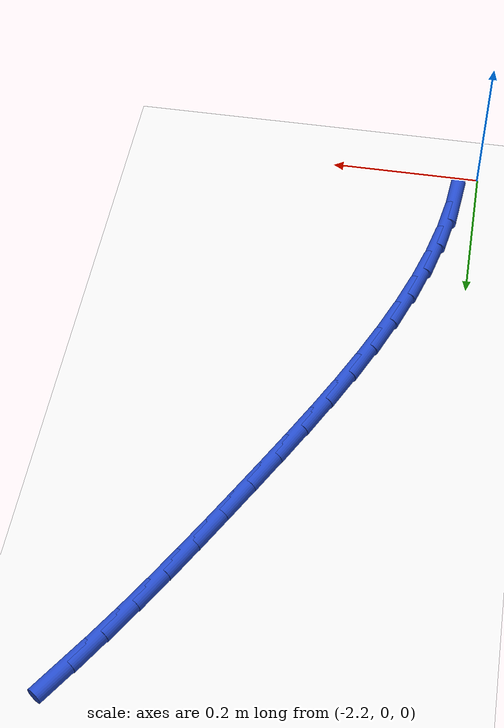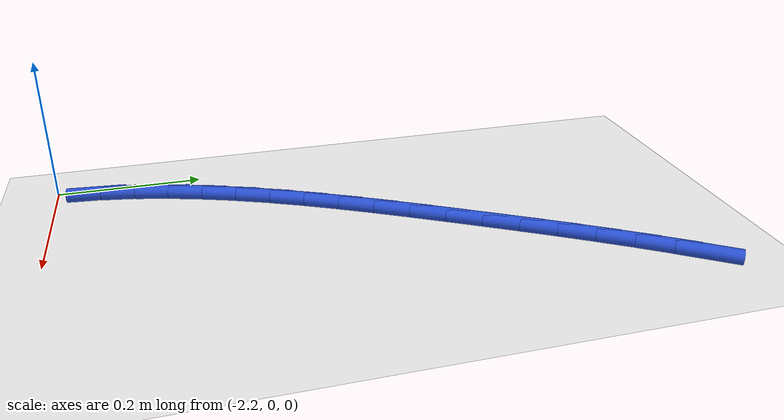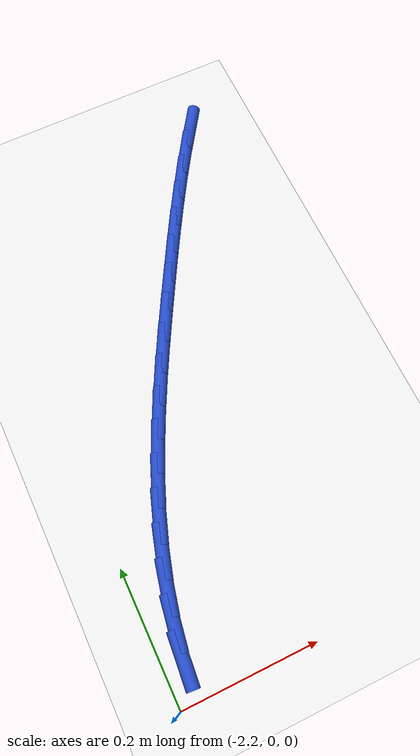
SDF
<sdf version="1.6">
 <world name="default">
  <model name="ground_plane">
   <static>1</static>
   <link name="link">
    <collision name="collision">
     <geometry><plane><normal>0 0 1</normal><size>100 100</size></plane></geometry>
     <surface><friction><ode><mu>100</mu><mu2>50</mu2></ode></friction></surface>
    </collision>
    <visual name="visual">
     <cast_shadows>0</cast_shadows>
     <geometry><plane><normal>0 0 1</normal><size>100 100</size></plane></geometry>
     <material>
      <script><uri>file://media/materials/scripts/gazebo.material</uri><name>Gazebo/WhiteGlow</name></script>
     </material>
    </visual>
   </link>
  </model>
  <model name="line">
   <link name="link_53">
    <pose>-1.8170482289391308 0.8036118865817466 0.01 0 1.57 0.9799388127509421</pose>
    <collision name="collision">
     <geometry><cylinder><radius>0.01</radius><length>0.08</length></cylinder></geometry>
    </collision>
    <visual name="visual">
     <material>
      <script><name>Gazebo/Blue</name><uri>file://media/materials/scripts/gazebo.material</uri></script>
     </material>
     <geometry><cylinder><radius>0.01</radius><length>0.08</length></cylinder></geometry>
    </visual>
   </link>
   <link name="link_54">
    <pose>-1.8439378196037892 0.7635259313558358 0.01 0 1.57 1.0034240550342428</pose>
    <collision name="collision">
     <geometry><cylinder><radius>0.01</radius><length>0.08</length></cylinder></geometry>
    </collision>
    <visual name="visual">
     <material>
      <script><name>Gazebo/Blue</name><uri>file://media/materials/scripts/gazebo.material</uri></script>
     </material>
     <geometry><cylinder><radius>0.01</radius><length>0.08</length></cylinder></geometry>
    </visual>
   </link>
   <link name="link_55">
    <pose>-1.8699549517444132 0.722699852314802 0.01 0 1.57 1.0230896271923058</pose>
    <collision name="collision">
     <geometry><cylinder><radius>0.01</radius><length>0.08</length></cylinder></geometry>
    </collision>
    <visual name="visual">
     <material>
      <script><name>Gazebo/Blue</name><uri>file://media/materials/scripts/gazebo.material</uri></script>
     </material>
     <geometry><cylinder><radius>0.01</radius><length>0.08</length></cylinder></geometry>
    </visual>
   </link>
   <link name="link_56">
    <pose>-1.8952689862790049 0.6811983251949913 0.01 0 1.57 1.0389248412638683</pose>
    <collision name="collision">
     <geometry><cylinder><radius>0.01</radius><length>0.08</length></cylinder></geometry>
    </collision>
    <visual name="visual">
     <material>
      <script><name>Gazebo/Blue</name><uri>file://media/materials/scripts/gazebo.material</uri></script>
     </material>
     <geometry><cylinder><radius>0.01</radius><length>0.08</length></cylinder></geometry>
    </visual>
   </link>
   <link name="link_57">
    <pose>-1.9200492841255716 0.6390860257327488 0.01 0 1.57 1.050949002536453</pose>
    <collision name="collision">
     <geometry><cylinder><radius>0.01</radius><length>0.08</length></cylinder></geometry>
    </collision>
    <visual name="visual">
     <material>
      <script><name>Gazebo/Blue</name><uri>file://media/materials/scripts/gazebo.material</uri></script>
     </material>
     <geometry><cylinder><radius>0.01</radius><length>0.08</length></cylinder></geometry>
    </visual>
   </link>
   <link name="link_58">
    <pose>-1.9444652062021157 0.5964276296644199 0.01 0 1.57 1.0592038457666697</pose>
    <collision name="collision">
     <geometry><cylinder><radius>0.01</radius><length>0.08</length></cylinder></geometry>
    </collision>
    <visual name="visual">
     <material>
      <script><name>Gazebo/Blue</name><uri>file://media/materials/scripts/gazebo.material</uri></script>
     </material>
     <geometry><cylinder><radius>0.01</radius><length>0.08</length></cylinder></geometry>
    </visual>
   </link>
   <link name="link_59">
    <pose>-1.9686861134266413 0.5532878127263494 0.01 0 1.57 1.0641530904964682</pose>
    <collision name="collision">
     <geometry><cylinder><radius>0.01</radius><length>0.08</length></cylinder></geometry>
    </collision>
    <visual name="visual">
     <material>
      <script><name>Gazebo/Blue</name><uri>file://media/materials/scripts/gazebo.material</uri></script>
     </material>
     <geometry><cylinder><radius>0.01</radius><length>0.08</length></cylinder></geometry>
    </visual>
   </link>
   <link name="link_60">
    <pose>-1.992859440519224 0.5097291230249851 0.01 0 1.57 1.0709971600398125</pose>
    <collision name="collision">
     <geometry><cylinder><radius>0.01</radius><length>0.08</length></cylinder></geometry>
    </collision>
    <visual name="visual">
     <material>
      <script><name>Gazebo/Blue</name><uri>file://media/materials/scripts/gazebo.material</uri></script>
     </material>
     <geometry><cylinder><radius>0.01</radius><length>0.08</length></cylinder></geometry>
    </visual>
   </link>
   <link name="link_61">
    <pose>-2.01685365306206 0.4657870386256999 0.01 0 1.57 1.0832991205285547</pose>
    <collision name="collision">
     <geometry><cylinder><radius>0.01</radius><length>0.08</length></cylinder></geometry>
    </collision>
    <visual name="visual">
     <material>
      <script><name>Gazebo/Blue</name><uri>file://media/materials/scripts/gazebo.material</uri></script>
     </material>
     <geometry><cylinder><radius>0.01</radius><length>0.08</length></cylinder></geometry>
    </visual>
   </link>
   <link name="link_62">
    <pose>-2.0403451022061776 0.4214783955835661 0.01 0 1.57 1.101221303776828</pose>
    <collision name="collision">
     <geometry><cylinder><radius>0.01</radius><length>0.08</length></cylinder></geometry>
    </collision>
    <visual name="visual">
     <material>
      <script><name>Gazebo/Blue</name><uri>file://media/materials/scripts/gazebo.material</uri></script>
     </material>
     <geometry><cylinder><radius>0.01</radius><length>0.08</length></cylinder></geometry>
    </visual>
   </link>
   <link name="link_63">
    <pose>-2.0630063450753937 0.37681966179654125 0.01 0 1.57 1.1249529116845707</pose>
    <collision name="collision">
     <geometry><cylinder><radius>0.01</radius><length>0.08</length></cylinder></geometry>
    </collision>
    <visual name="visual">
     <material>
      <script><name>Gazebo/Blue</name><uri>file://media/materials/scripts/gazebo.material</uri></script>
     </material>
     <geometry><cylinder><radius>0.01</radius><length>0.08</length></cylinder></geometry>
    </visual>
   </link>
   <link name="link_64">
    <pose>-2.0845099387935324 0.3318273051625852 0.01 0 1.57 1.1547683860261622</pose>
    <collision name="collision">
     <geometry><cylinder><radius>0.01</radius><length>0.08</length></cylinder></geometry>
    </collision>
    <visual name="visual">
     <material>
      <script><name>Gazebo/Blue</name><uri>file://media/materials/scripts/gazebo.material</uri></script>
     </material>
     <geometry><cylinder><radius>0.01</radius><length>0.08</length></cylinder></geometry>
    </visual>
   </link>
   <link name="link_65">
    <pose>-2.104528440484414 0.2865177935796563 0.01 0 1.57 1.1910105168335872</pose>
    <collision name="collision">
     <geometry><cylinder><radius>0.01</radius><length>0.08</length></cylinder></geometry>
    </collision>
    <visual name="visual">
     <material>
      <script><name>Gazebo/Blue</name><uri>file://media/materials/scripts/gazebo.material</uri></script>
     </material>
     <geometry><cylinder><radius>0.01</radius><length>0.08</length></cylinder></geometry>
    </visual>
   </link>
   <link name="link_66">
    <pose>-2.1227344072718584 0.24090759494571273 0.01 0 1.57 1.234064385428644</pose>
    <collision name="collision">
     <geometry><cylinder><radius>0.01</radius><length>0.08</length></cylinder></geometry>
    </collision>
    <visual name="visual">
     <material>
      <script><name>Gazebo/Blue</name><uri>file://media/materials/scripts/gazebo.material</uri></script>
     </material>
     <geometry><cylinder><radius>0.01</radius><length>0.08</length></cylinder></geometry>
    </visual>
   </link>
   <link name="link_67">
    <pose>-2.1388003962796875 0.1950131771587141 0.01 0 1.57 1.2843170728541082</pose>
    <collision name="collision">
     <geometry><cylinder><radius>0.01</radius><length>0.08</length></cylinder></geometry>
    </collision>
    <visual name="visual">
     <material>
      <script><name>Gazebo/Blue</name><uri>file://media/materials/scripts/gazebo.material</uri></script>
     </material>
     <geometry><cylinder><radius>0.01</radius><length>0.08</length></cylinder></geometry>
    </visual>
   </link>
   <link name="link_68">
    <pose>-2.1523989646317214 0.1488510081166185 0.01 0 1.57 1.342097776611007</pose>
    <collision name="collision">
     <geometry><cylinder><radius>0.01</radius><length>0.08</length></cylinder></geometry>
    </collision>
    <visual name="visual">
     <material>
      <script><name>Gazebo/Blue</name><uri>file://media/materials/scripts/gazebo.material</uri></script>
     </material>
     <geometry><cylinder><radius>0.01</radius><length>0.08</length></cylinder></geometry>
    </visual>
   </link>
   <link name="link_69">
    <pose>-2.163202669451783 0.10243755571738533 0.01 0 1.57 1.4075945656852336</pose>
    <collision name="collision">
     <geometry><cylinder><radius>0.01</radius><length>0.08</length></cylinder></geometry>
    </collision>
    <visual name="visual">
     <material>
      <script><name>Gazebo/Blue</name><uri>file://media/materials/scripts/gazebo.material</uri></script>
     </material>
     <geometry><cylinder><radius>0.01</radius><length>0.08</length></cylinder></geometry>
    </visual>
   </link>
   <link name="link_70">
    <pose>-2.1708840678636907 0.05578928785897257 0.01 0 1.57 1.4807446278080458</pose>
    <collision name="collision">
     <geometry><cylinder><radius>0.01</radius><length>0.08</length></cylinder></geometry>
    </collision>
    <visual name="visual">
     <material>
      <script><name>Gazebo/Blue</name><uri>file://media/materials/scripts/gazebo.material</uri></script>
     </material>
     <geometry><cylinder><radius>0.01</radius><length>0.08</length></cylinder></geometry>
    </visual>
   </link>
  </model>
 </world>
</sdf>
